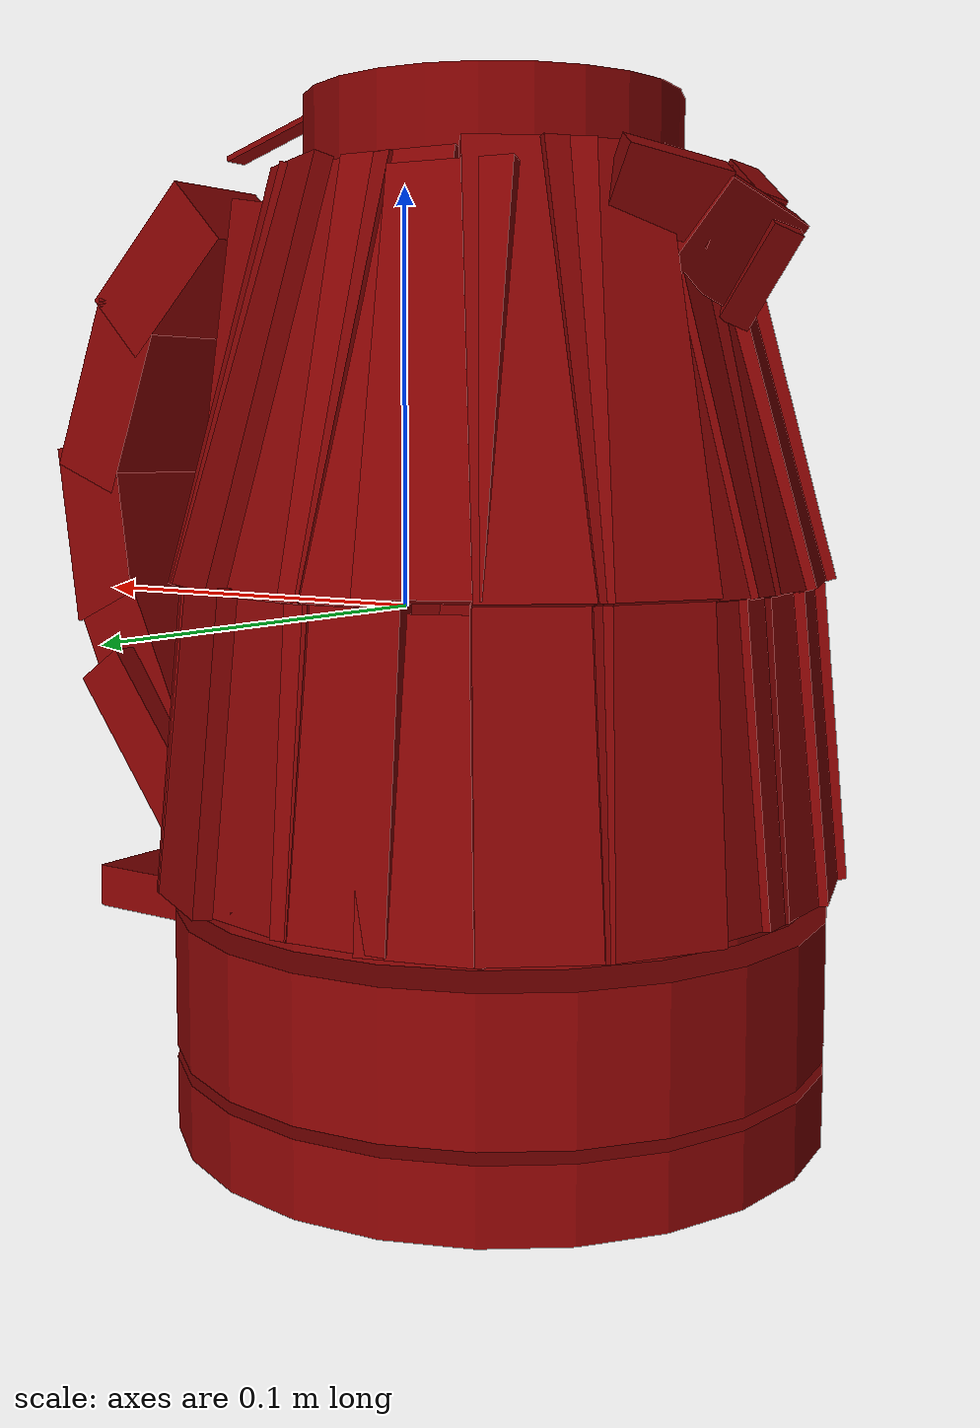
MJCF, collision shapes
<?xml version='1.0' encoding='UTF-8'?>
<mujoco model="model">
  <option timestep="0.002" gravity="0.0 0.0 -9.81"/>
  <compiler angle="radian"/>
  <asset>
    <mesh file="visuals/button_lid.obj" name="button_lid_vis"/>
    <mesh file="visuals/Body001.obj" name="Body001_vis"/>
    <mesh file="visuals/kettle_main.obj" name="kettle_main_vis"/>
    <mesh file="visuals/kettle_main_Clear.obj" name="kettle_main_Clear_vis"/>
    <mesh file="visuals/lid.obj" name="lid_vis"/>
    <mesh file="visuals/switch.obj" name="switch_vis"/>
    <texture file="visuals/T_BC001.png" name="Body001_material" type="2d"/>
    <material name="Body001_material" rgba="1 1 1 1.0" texture="Body001_material" shininess="0.4472135901451111" specular="0.3103448502657381"/>
    <texture file="visuals/T_BC001.png" name="kettle_main_material" type="2d"/>
    <material name="kettle_main_material" rgba="1 1 1 1.0" texture="kettle_main_material" shininess="0.4472135901451111" specular="0.3103448502657381"/>
    <texture file="visuals/T_BC001.png" name="button_lid_material" type="2d"/>
    <material name="button_lid_material" rgba="1 1 1 1.0" texture="button_lid_material" shininess="0.4472135901451111" specular="0.3103448502657381"/>
    <texture file="visuals/T_BC001.png" name="kettle_main_Clear_material" type="2d"/>
    <material name="kettle_main_Clear_material" rgba="1 1 1 0.699999988079071" texture="kettle_main_Clear_material" shininess="0.4472135901451111" specular="0.3103448502657381"/>
    <texture file="visuals/T_BC001.png" name="lid_material" type="2d"/>
    <material name="lid_material" rgba="1 1 1 1.0" texture="lid_material" shininess="0.4472135901451111" specular="0.3103448502657381"/>
    <texture file="visuals/T_BC001.png" name="switch_material" type="2d"/>
    <material name="switch_material" rgba="1 1 1 1.0" texture="switch_material" shininess="0.4472135901451111" specular="0.3103448502657381"/>
  </asset>
  <default>
    <default class="visual">
      <geom conaffinity="0" contype="0" group="1" type="mesh"/>
    </default>
    <default class="collision">
      <geom group="0" rgba="0.5 0 0 0.5" density="1.0" solref="0.004 1" solimp="0.998 0.998 0.001"/>
    </default>
    <default class="spawn">
      <geom group="0" rgba="1 1 1 0.5" contype="0" conaffinity="0"/>
      <site group="0" rgba="1 1 1 0.5"/>
    </default>
    <default class="region">
      <geom group="1" conaffinity="0" contype="0" rgba="0 1 0 0" mass="0"/>
    </default>
  </default>
  <worldbody>
    <body>
      <body name="object">
        <geom mesh="Body001_vis" type="mesh" solimp="0.998 0.998 0.001" solref="0.001 1" friction="0.95 0.3 0.1" class="visual" material="Body001_material"/>
        <geom type="cylinder" pos="-0.02722155675292015 -0.0010092105949297547 -0.11129803955554962" size="0.0768081322312355 0.008617708459496498" quat="1.0 0.0 0.0 0.0" class="collision"/>
        <body name="kettle_main">
          <geom mesh="kettle_main_vis" type="mesh" solimp="0.998 0.998 0.001" solref="0.001 1" friction="0.95 0.3 0.1" class="visual" material="kettle_main_material"/>
          <geom type="box" pos="0.04201378673315048 1.4690985494780762e-07 0.0354456752538681" size="0.008989891037344933 0.01609395258128643 0.06281956285238266" quat="0.9965038299560547 7.594302852201984e-17 -0.0835471823811531 2.859695147350294e-09" class="collision"/>
          <geom class="collision" type="box" pos="0.06662041693925858 0.0005889029707759619 -0.04332192242145538" size="0.007249075919389725 0.020444408059120178 0.03145648539066315" quat="0.9527907967567444 -0.01201614085584879 0.3026692271232605 0.02089674398303032" name="handle_5"/>
          <geom class="collision" type="box" pos="0.07869435101747513 1.4495607558728807e-07 -0.021634802222251892" size="0.01047359500080347 0.015055187046527863 0.020427098497748375" quat="0.9771967530250549 6.88806133916013e-16 0.21233582496643066 -7.267941803945632e-09" name="handle_4"/>
          <geom class="collision" type="box" pos="0.09147712588310242 1.4626337474510365e-07 0.016558753326535225" size="0.010473599657416344 0.015055186115205288 0.023168545216321945" quat="0.9974961280822754 -5.918182144774354e-16 0.07072144001722336 -2.42068920464078e-09" name="handle_main"/>
          <geom class="collision" type="box" pos="0.08654046058654785 1.4747382692803512e-07 0.0519225150346756" size="0.010473595932126045 0.015055186115205288 0.023168545216321945" quat="0.9830483794212341 -7.324960933353898e-16 -0.18334630131721497 6.275673314348751e-09" name="handle_2"/>
          <geom class="collision" type="box" pos="0.06790594756603241 1.485413605450958e-07 0.08311080932617188" size="0.01047359686344862 0.015055186115205288 0.020393677055835724" quat="0.9199845790863037 -2.7333045935385315e-15 -0.3919545114040375 1.341603095283972e-08" name="handle_1"/>
          <geom type="box" pos="-0.08053702116012573 0.019328923895955086 0.09065964818000793" size="0.0036202354822307825 0.011546943336725235 0.00821163970977068" quat="0.9015769362449646 0.02373584546148777 -0.2408757507801056 -0.35857293009757996" class="collision"/>
          <geom type="box" pos="-0.08790590614080429 0.004140382166951895 0.08134017884731293" size="0.0036202368792146444 0.011546945199370384 0.011602171696722507" quat="0.9193747639656067 0.12453010678291321 -0.3004531264305115 -0.22129221260547638" class="collision"/>
          <geom type="box" pos="-0.08676664531230927 -0.006949464324861765 0.07933914661407471" size="0.003620235715061426 0.011546943336725235 0.01160216610878706" quat="0.8744507431983948 -0.15662609040737152 -0.2659342288970947 0.3742767870426178" class="collision"/>
          <geom type="box" pos="-0.08016178011894226 -0.018924469128251076 0.09193047881126404" size="0.00362023594789207 0.011546943336725235 0.0060956706292927265" quat="0.8819336295127869 -0.1455392837524414 -0.22300022840499878 0.3889501988887787" class="collision"/>
          <geom type="cylinder" pos="-0.02722155675292015 -0.0010092105949297547 -0.08373555541038513" size="0.07685434073209763 0.016160646453499794" quat="1.0 0.0 0.0 0.0" class="collision"/>
          <body name="button_lid">
            <joint axis="-0.13917313516139984 0.0 -0.9902681708335876" pos="0.03903753682971001 -0.00021310761803761125 0.11202473938465118" limited="true" name="button_lid_joint" range="0.0 0.002" type="slide" damping="1" frictionloss="1" armature=".01" stiffness="0.05" springref="-2"/>
            <geom mesh="button_lid_vis" type="mesh" solimp="0.998 0.998 0.001" solref="0.001 1" friction="0.95 0.3 0.1" class="visual" material="button_lid_material"/>
            <geom class="collision" type="box" pos="0.04002637043595314 -0.0005775438039563596 0.11527029424905777" size="0.0006470034131780267 0.0031915181316435337 0.014701933600008488" quat="0.8017017841339111 -4.699236555438802e-09 -0.5977242588996887 2.6219648674441487e-08" name="button_lid_main"/>
          </body>
          <body name="kettle_main_Clear">
            <geom mesh="kettle_main_Clear_vis" type="mesh" solimp="0.998 0.998 0.001" solref="0.001 1" friction="0.95 0.3 0.1" class="visual" material="kettle_main_Clear_material"/>
            <geom type="cylinder" pos="-0.02668241411447525 -0.00046684127300977707 -0.06114138290286064" size="0.07518697530031204 0.0022807568311691284" quat="1.0 0.0 0.0 0.0" class="collision"/>
            <geom type="box" pos="-0.09858841449022293 1.3731190051657904e-07 -0.026205215603113174" size="0.0022226141300052404 0.013775870203971863 0.03540914133191109" quat="0.998891294002533 -1.611361183373461e-10 0.04707598313689232 -3.2820599571437015e-09" class="collision"/>
            <geom type="box" pos="-0.09644709527492523 -0.022902319207787514 -0.026058677583932877" size="0.0022226141300052404 0.013775870203971863 0.03540913015604019" quat="0.9860534071922302 -0.0075231799855828285 0.04647080600261688 0.15963239967823029" class="collision"/>
            <geom type="box" pos="-0.08724537491798401 -0.04426399618387222 -0.025899987667798996" size="0.002222613664343953 0.013775866478681564 0.03540912643074989" quat="0.9484701156616211 -0.01476761233061552 0.044699590653181076 0.3133500814437866" class="collision"/>
            <geom type="box" pos="-0.07098263502120972 -0.06028774753212929 -0.025905480608344078" size="0.0022226145956665277 0.013775873929262161 0.03540914133191109" quat="0.8890649676322937 -0.02145998552441597 0.04190000519156456 0.45535412430763245" class="collision"/>
            <geom type="box" pos="-0.049595389515161514 -0.0673801600933075 -0.02623271942138672" size="0.0022226141300052404 0.013775864616036415 0.03540913760662079" quat="0.8086549639701843 -0.027635756880044937 0.03811036795377731 0.5863966345787048" class="collision"/>
            <geom type="box" pos="-0.027211928740143776 -0.07069927453994751 -0.026257049292325974" size="0.002222614362835884 0.013775874860584736 0.035409148782491684" quat="0.7045503854751587 -0.033370960503816605 0.03320411220192909 0.7080908417701721" class="collision"/>
            <geom type="box" pos="-0.005019556265324354 -0.06754183769226074 -0.026215489953756332" size="0.002222613897174597 0.013775868341326714 0.03540914133191109" quat="0.5838850140571594 -0.038195885717868805 0.02751736156642437 0.8104703426361084" class="collision"/>
            <geom type="box" pos="0.016206197440624237 -0.059947844594717026 -0.025935323908925056" size="0.0022226134315133095 0.013775868341326714 0.035409115254879" quat="0.4524306654930115 -0.04197021573781967 0.02132219262421131 0.8905562162399292" class="collision"/>
            <geom type="box" pos="0.035580094903707504 -0.0389801450073719 -0.025942064821720123" size="0.0022226134315133095 0.01377587765455246 0.03540914133191109" quat="0.2727084159851074 -0.04528744891285896 0.012852184474468231 0.9609443545341492" class="collision"/>
            <geom type="box" pos="0.04464205726981163 -0.017063023522496223 -0.025945289060473442" size="0.0022226141300052404 0.013775866478681564 0.03540914133191109" quat="0.11563549190759659 -0.04675917699933052 0.0054496522061526775 0.9921755194664001" class="collision"/>
            <geom type="box" pos="0.04635562002658844 0.0063081360422074795 -0.02594597637653351" size="0.002222613664343953 0.013775867410004139 0.035409115254879" quat="0.042503487318754196 0.04703318327665329 0.0020031053572893143 -0.9979866147041321" class="collision"/>
            <geom type="box" pos="0.04094963148236275 0.028455261141061783 -0.025944234803318977" size="0.0022226134315133095 0.013775864616036415 0.03540913760662079" quat="0.19533079862594604 0.046167001128196716 0.009205562062561512 -0.9796069264411926" class="collision"/>
            <geom type="box" pos="0.027694376185536385 0.04950957000255585 -0.025939783081412315" size="0.002222613897174597 0.013775869272649288 0.03540912643074989" quat="0.35681435465812683 0.04396996647119522 0.016815969720482826 -0.9329884052276611" class="collision"/>
            <geom type="box" pos="0.009256304241716862 0.06442540138959885 -0.025933532044291496" size="0.002222614362835884 0.013775872066617012 0.03540914133191109" quat="0.5013288259506226 0.040717508643865585 0.02362668141722679 -0.8639752864837646" class="collision"/>
            <geom type="box" pos="-0.013633760623633862 0.06800924241542816 -0.026379419490695" size="0.0022226145956665277 0.013775871135294437 0.03540913760662079" quat="0.631479799747467 0.036475371569395065 0.029760418459773064 -0.7739619612693787" class="collision"/>
            <geom type="box" pos="-0.03498903661966324 0.06947451084852219 -0.02633088454604149" size="0.0022226148284971714 0.013775872997939587 0.03540912643074989" quat="0.7428945899009705 0.03146980702877045 0.035011183470487595 -0.6677510738372803" class="collision"/>
            <geom type="box" pos="-0.053485650569200516 0.06529625505208969 -0.028121767565608025" size="0.002135859103873372 0.013775868341326714 0.03422689810395241" quat="0.7865890264511108 0.03183537349104881 0.05434313416481018 -0.6142564415931702" class="collision"/>
            <geom type="box" pos="-0.07534916698932648 0.056860197335481644 -0.025904512032866478" size="0.0022226127330213785 0.013775871135294437 0.03540912643074989" quat="0.9054586291313171 0.01987938955426216 0.042672596871852875 -0.42181581258773804" class="collision"/>
            <geom type="box" pos="-0.09071271866559982 0.03912953659892082 -0.02589917555451393" size="0.002222615061327815 0.013775872997939587 0.03540915250778198" quat="0.9607110619544983 0.012890906073153019 0.04527648910880089 -0.2735289931297302" class="collision"/>
            <geom type="box" pos="-0.0957435891032219 0.017136327922344208 -0.026273954659700394" size="0.002222614362835884 0.013775872066617012 0.03540913015604019" quat="0.9913296103477478 0.005781511776149273 0.046719446778297424 -0.12267637997865677" class="collision"/>
            <geom type="box" pos="-0.08677922189235687 1.373277598304412e-07 0.05394737794995308" size="0.000933235976845026 0.013775870203971863 0.047751136124134064" quat="0.9910547733306885 1.2386942860320715e-10 0.1334555745124817 -3.283678218224395e-09" class="collision"/>
            <geom type="box" pos="-0.08424001187086105 -0.018843533471226692 0.05404665693640709" size="0.0019787875935435295 0.013775872066617012 0.047751136124134064" quat="0.9783176779747009 -0.021327462047338486 0.13174019753932953 0.15838001668453217" class="collision"/>
            <geom type="box" pos="-0.07668396085500717 -0.03643055260181427 0.05437836796045303" size="0.002222613897174597 0.013775867410004139 0.04775111749768257" quat="0.9410291910171509 -0.04186467453837395 0.1267189234495163 0.3108917474746704" class="collision"/>
            <geom type="box" pos="-0.06330104917287827 -0.049621108919382095 0.054305437952280045" size="0.0022226148284971714 0.013775874860584736 0.047751136124134064" quat="0.8820900917053223 -0.06083688512444496 0.11878222972154617 0.4517817199230194" class="collision"/>
            <geom type="box" pos="-0.045965828001499176 -0.05627842992544174 0.053695596754550934" size="0.000819347333163023 0.013775864616036415 0.04775113984942436" quat="0.8023109436035156 -0.07834461331367493 0.10803905874490738 0.5817962288856506" class="collision"/>
            <geom type="box" pos="-0.027270756661891937 -0.05896312743425369 0.05354839935898781" size="0.0008890968747437 0.013775871135294437 0.04775114730000496" quat="0.6990230679512024 -0.09460336714982986 0.09413038194179535 0.7025357484817505" class="collision"/>
            <geom type="box" pos="-0.008840197697281837 -0.056096598505973816 0.05352703854441643" size="0.0012192606227472425 0.013775868341326714 0.04775112867355347" quat="0.5793043375015259 -0.10828161984682083 0.07800904661417007 0.8041120171546936" class="collision"/>
            <geom type="box" pos="0.008466321043670177 -0.04934779927134514 0.054013337939977646" size="0.0022226134315133095 0.013775869272649288 0.04775112867355347" quat="0.44888126850128174 -0.11898138374090195 0.060446299612522125 0.883569598197937" class="collision"/>
            <geom type="box" pos="0.024414245039224625 -0.03208746388554573 0.05397242307662964" size="0.0022226134315133095 0.01377587579190731 0.047751136124134064" quat="0.27056896686553955 -0.12838542461395264 0.03643475100398064 0.9534055590629578" class="collision"/>
            <geom type="box" pos="0.03187251836061478 -0.01404552347958088 0.053967200219631195" size="0.002222614362835884 0.01377586554735899 0.047751136124134064" quat="0.11472830921411514 -0.13255798816680908 0.015449287369847298 0.9843917489051819" class="collision"/>
            <geom type="box" pos="0.03328080102801323 0.00519242137670517 0.05398837849497795" size="0.0022226141300052404 0.01377586554735899 0.047751110047101974" quat="0.04217004030942917 0.1333344280719757 0.005678610410541296 -0.9901572465896606" class="collision"/>
            <geom type="box" pos="0.028828492388129234 0.023421281948685646 0.05403202027082443" size="0.002222613664343953 0.013775870203971863 0.04775115102529526" quat="0.19379839301109314 0.13087883591651917 0.026096869260072708 -0.9719217419624329" class="collision"/>
            <geom type="box" pos="0.01791571080684662 0.040748629719018936 0.05410079285502434" size="0.002222613897174597 0.013775869272649288 0.04775112867355347" quat="0.3540150821208954 0.12465045601129532 0.047671593725681305 -0.9256689548492432" class="collision"/>
            <geom type="box" pos="0.0027387640438973904 0.05302223935723305 0.05417989566922188" size="0.0022226134315133095 0.013775872066617012 0.04775113984942436" quat="0.4973958134651184 0.11543009430170059 0.06697927415370941 -0.8571972250938416" class="collision"/>
            <geom type="box" pos="-0.01591605879366398 0.05686866492033005 0.053431540727615356" size="0.0005453555495478213 0.013775868341326714 0.04775113984942436" quat="0.6265257596969604 0.10340402275323868 0.08436787128448486 -0.7678900957107544" class="collision"/>
            <geom type="box" pos="-0.03373563662171364 0.05774298310279846 0.05351203307509422" size="0.0009680041112005711 0.013775870203971863 0.04775111749768257" quat="0.7370664477348328 0.08921382576227188 0.09925326704978943 -0.6625124216079712" class="collision"/>
            <geom type="box" pos="-0.04991568997502327 0.056585296988487244 0.052360039204359055" size="0.0021358588710427284 0.01377586554735899 0.044902559369802475" quat="0.7815905809402466 0.07054299861192703 0.1038833037018776 -0.6110221743583679" class="collision"/>
            <geom type="box" pos="-0.06688713282346725 0.04679064825177193 0.05445494502782822" size="0.0022226120345294476 0.013775870203971863 0.047751110047101974" quat="0.8983551859855652 0.0563560426235199 0.12097248435020447 -0.4185064136981964" class="collision"/>
            <geom type="box" pos="-0.07953023910522461 0.03220018744468689 0.05448601767420769" size="0.0022226148284971714 0.013775872066617012 0.047751158475875854" quat="0.9531741142272949 0.03654441982507706 0.1283542811870575 -0.271383136510849" class="collision"/>
            <geom type="box" pos="-0.08452983945608139 0.014317777007818222 0.053831420838832855" size="0.0007001737831160426 0.013775870203971863 0.047751136124134064" quat="0.9835524559020996 0.016390003263950348 0.13244503736495972 -0.12171399593353271" class="collision"/>
          </body>
          <body name="lid">
            <joint axis="0.0 1.0 0.0" pos="0.016730427742004395 -2.2817766875959933e-05 0.11013001203536987" limited="true" name="lid_joint" range="0.0 1.7453292519943295" type="hinge" damping="1" frictionloss="0.1" armature=".01" stiffness="0.05" springref="-6"/>
            <geom mesh="lid_vis" type="mesh" solimp="0.998 0.998 0.001" solref="0.001 1" friction="0.95 0.3 0.1" class="visual" material="lid_material"/>
            <geom class="collision" type="cylinder" pos="-0.025669610127806664 0.00035593059146776795 0.09998408704996109" size="0.043477863073349 0.017233818769454956" quat="1.0 0.0 0.0 0.0" name="lid_main"/>
          </body>
          <body name="switch">
            <joint axis="0.0 0.0 -1.0" pos="0.0756685882806778 -0.0012993308482691646 -0.08046502619981766" limited="true" name="switch_joint" range="0.0 0.005" type="slide" damping="1" frictionloss="1" armature=".01" stiffness="0.05" springref="-2"/>
            <geom mesh="switch_vis" type="mesh" solimp="0.998 0.998 0.001" solref="0.001 1" friction="0.95 0.3 0.1" class="visual" material="switch_material"/>
            <geom class="collision" type="box" pos="0.0794016495347023 -0.0018014289671555161 -0.08048024773597717" size="0.015766000375151634 0.013841858133673668 0.005593207664787769" quat="1.0 0.0 0.0 0.0" name="switch_main"/>
          </body>
        </body>
        <geom class="region" name="reg_main" type="box" pos="0.0 0.0 0.0" size="0.10657770729064941 0.07904347574710846 0.12192188000679016"/>
      </body>
    </body>
  </worldbody>
  <actuator>
    <motor name="button_lid_joint_actuator" joint="button_lid_joint" gear="0.5"/>
    <motor name="lid_joint_actuator" joint="lid_joint" gear="0.5"/>
    <motor name="switch_joint_actuator" joint="switch_joint" gear="0.5"/>
  </actuator>
</mujoco>
